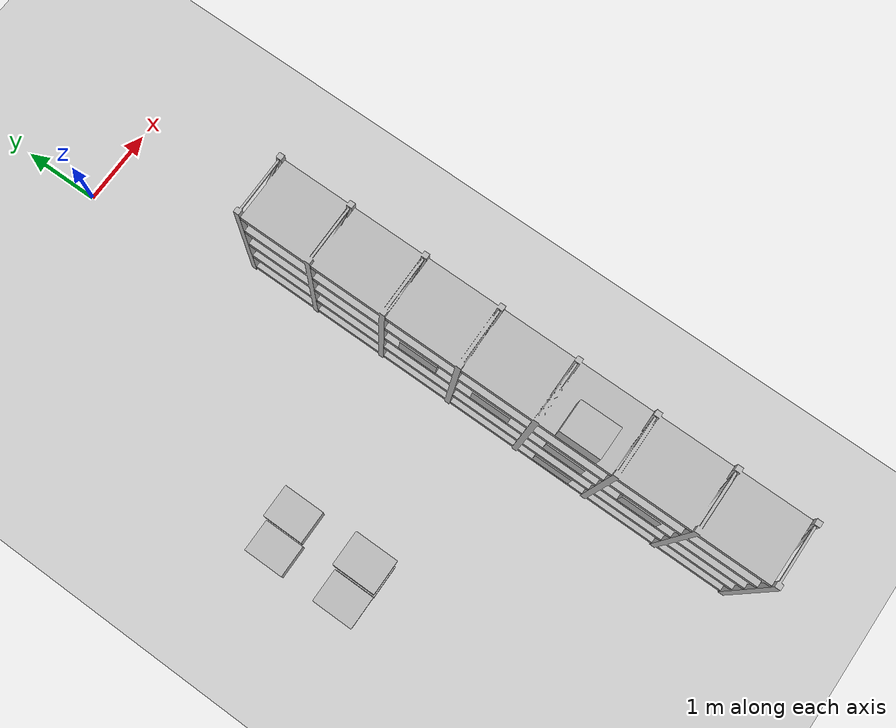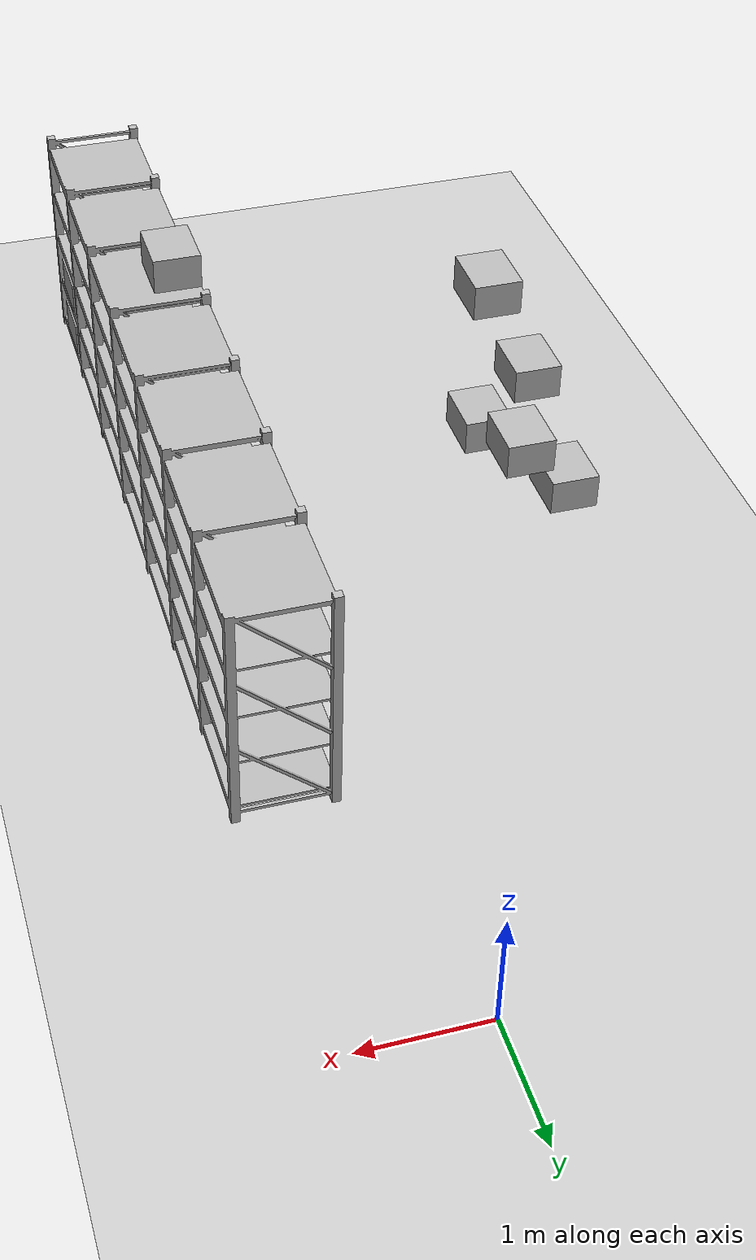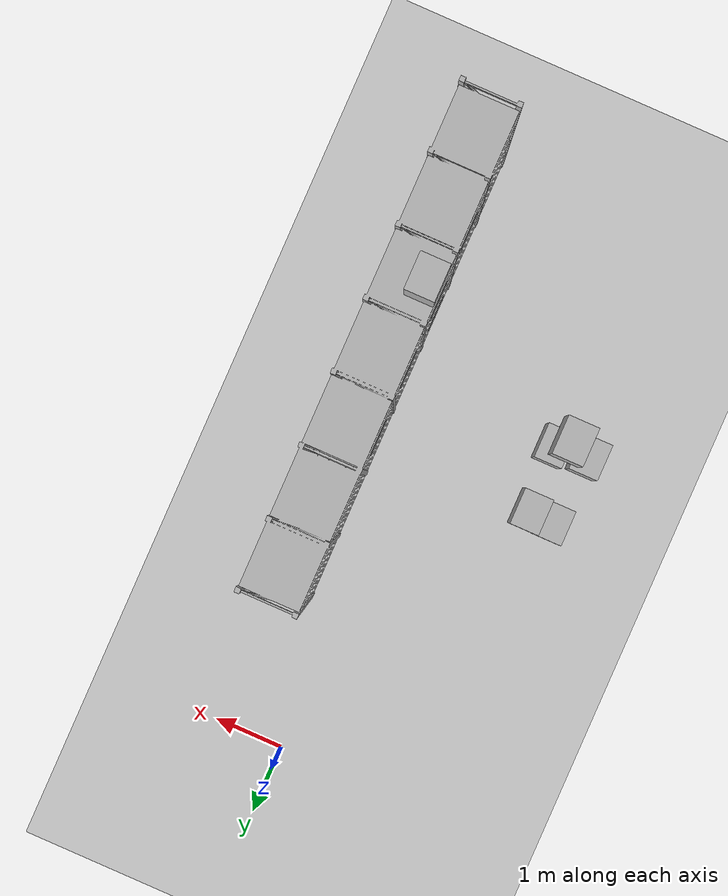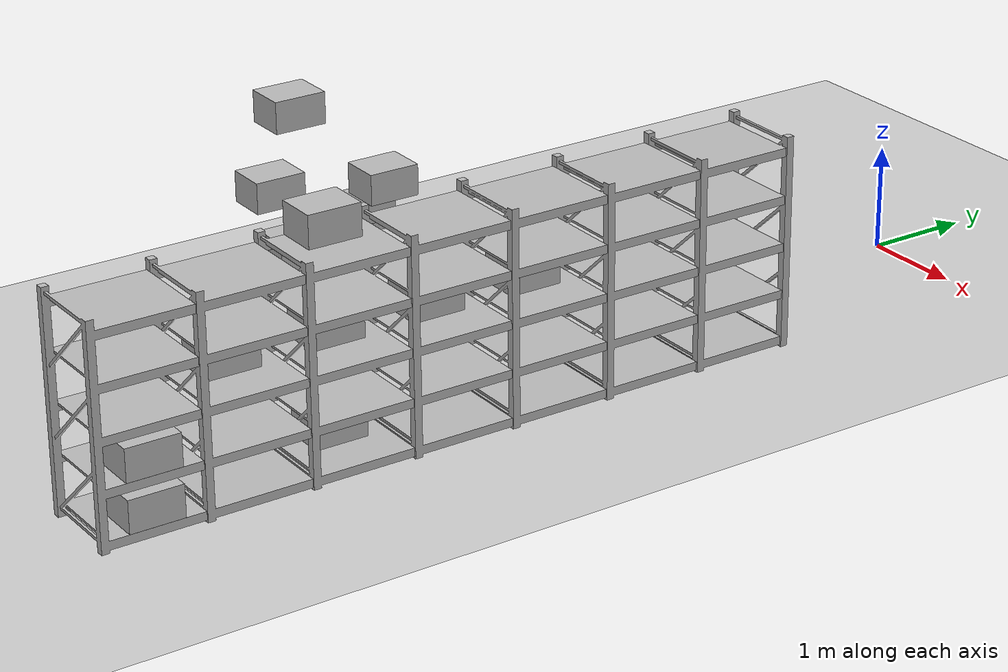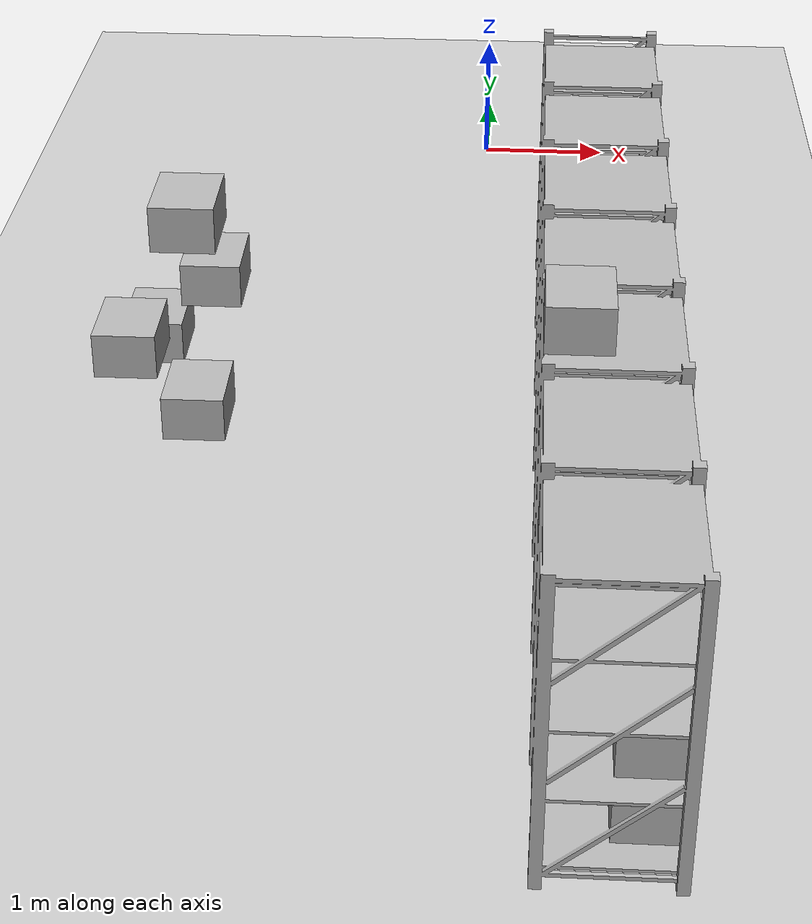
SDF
<sdf version="1.6">
 <world name="default">
  <model name="ground_plane">
   <static>1</static>
   <link name="link">
    <collision name="collision">
     <geometry><plane><normal>0 0 1</normal><size>100 100</size></plane></geometry>
     <surface><friction><ode><mu>100</mu><mu2>50</mu2></ode></friction></surface>
    </collision>
    <visual name="visual">
     <cast_shadows>0</cast_shadows>
     <geometry><plane><normal>0 0 1</normal><size>100 100</size></plane></geometry>
     <material>
      <script><uri>file://media/materials/scripts/gazebo.material</uri><name>Gazebo/Grey</name></script>
     </material>
    </visual>
   </link>
  </model>
  <model name="box_A_001">
   <pose>-1.7351 -5.4469 0.702 0 0 0</pose>
   <link name="link">
    <inertial>
     <mass>2.0</mass>
     <inertia><ixx>0.05667</ixx><iyy>0.04167</iyy><izz>0.06833</izz><ixy>0</ixy><ixz>0</ixz><iyz>0</iyz></inertia>
    </inertial>
    <collision name="collision">
     <geometry><box><size>0.4 0.5 0.3</size></box></geometry>
     <surface><friction><ode><mu>1.0</mu><mu2>1.0</mu2></ode></friction></surface>
    </collision>
    <visual name="visual">
     <cast_shadows>0</cast_shadows>
     <geometry><box><size>0.4 0.5 0.3</size></box></geometry>
     <material>
      <script>
       <uri>model://labeled_boxes/materials/scripts</uri>
       <uri>model://labeled_boxes/materials/textures</uri>
       <name>LabeledBox/A-001</name>
      </script>
     </material>
    </visual>
   </link>
  </model>
  <model name="box_A_002">
   <pose>-2.1451 -5.4469 1.152 0 0 0</pose>
   <link name="link">
    <inertial>
     <mass>2.0</mass>
     <inertia><ixx>0.05667</ixx><iyy>0.04167</iyy><izz>0.06833</izz><ixy>0</ixy><ixz>0</ixz><iyz>0</iyz></inertia>
    </inertial>
    <collision name="collision">
     <geometry><box><size>0.4 0.5 0.3</size></box></geometry>
     <surface><friction><ode><mu>1.0</mu><mu2>1.0</mu2></ode></friction></surface>
    </collision>
    <visual name="visual">
     <cast_shadows>0</cast_shadows>
     <geometry><box><size>0.4 0.5 0.3</size></box></geometry>
     <material>
      <script>
       <uri>model://labeled_boxes/materials/scripts</uri>
       <uri>model://labeled_boxes/materials/textures</uri>
       <name>LabeledBox/A-002</name>
      </script>
     </material>
    </visual>
   </link>
  </model>
  <model name="box_A_003">
   <pose>-1.7351 -5.4469 2.052 0 0 0</pose>
   <link name="link">
    <inertial>
     <mass>2.0</mass>
     <inertia><ixx>0.05667</ixx><iyy>0.04167</iyy><izz>0.06833</izz><ixy>0</ixy><ixz>0</ixz><iyz>0</iyz></inertia>
    </inertial>
    <collision name="collision">
     <geometry><box><size>0.4 0.5 0.3</size></box></geometry>
     <surface><friction><ode><mu>1.0</mu><mu2>1.0</mu2></ode></friction></surface>
    </collision>
    <visual name="visual">
     <cast_shadows>0</cast_shadows>
     <geometry><box><size>0.4 0.5 0.3</size></box></geometry>
     <material>
      <script>
       <uri>model://labeled_boxes/materials/scripts</uri>
       <uri>model://labeled_boxes/materials/textures</uri>
       <name>LabeledBox/A-003</name>
      </script>
     </material>
    </visual>
   </link>
  </model>
  <model name="box_A_004">
   <pose>-2.1451 -4.4977 0.702 0 0 0</pose>
   <link name="link">
    <inertial>
     <mass>2.0</mass>
     <inertia><ixx>0.05667</ixx><iyy>0.04167</iyy><izz>0.06833</izz><ixy>0</ixy><ixz>0</ixz><iyz>0</iyz></inertia>
    </inertial>
    <collision name="collision">
     <geometry><box><size>0.4 0.5 0.3</size></box></geometry>
     <surface><friction><ode><mu>1.0</mu><mu2>1.0</mu2></ode></friction></surface>
    </collision>
    <visual name="visual">
     <cast_shadows>0</cast_shadows>
     <geometry><box><size>0.4 0.5 0.3</size></box></geometry>
     <material>
      <script>
       <uri>model://labeled_boxes/materials/scripts</uri>
       <uri>model://labeled_boxes/materials/textures</uri>
       <name>LabeledBox/A-004</name>
      </script>
     </material>
    </visual>
   </link>
  </model>
  <model name="box_A_005">
   <pose>-1.7351 -4.4977 1.152 0 0 0</pose>
   <link name="link">
    <inertial>
     <mass>2.0</mass>
     <inertia><ixx>0.05667</ixx><iyy>0.04167</iyy><izz>0.06833</izz><ixy>0</ixy><ixz>0</ixz><iyz>0</iyz></inertia>
    </inertial>
    <collision name="collision">
     <geometry><box><size>0.4 0.5 0.3</size></box></geometry>
     <surface><friction><ode><mu>1.0</mu><mu2>1.0</mu2></ode></friction></surface>
    </collision>
    <visual name="visual">
     <cast_shadows>0</cast_shadows>
     <geometry><box><size>0.4 0.5 0.3</size></box></geometry>
     <material>
      <script>
       <uri>model://labeled_boxes/materials/scripts</uri>
       <uri>model://labeled_boxes/materials/textures</uri>
       <name>LabeledBox/A-005</name>
      </script>
     </material>
    </visual>
   </link>
  </model>
  <include>
   <name>rack_A2_0</name>
   <uri>model://warehouse_rack_5lvl_7bay</uri>
   <pose>0.8599 -5.5477 0 0 0 0</pose>
  </include>
  <model name="box_A_013">
   <pose>1.0649 -8.4445 0.252 0 0 0</pose>
   <link name="link">
    <inertial>
     <mass>2.0</mass>
     <inertia><ixx>0.05667</ixx><iyy>0.04167</iyy><izz>0.06833</izz><ixy>0</ixy><ixz>0</ixz><iyz>0</iyz></inertia>
    </inertial>
    <collision name="collision">
     <geometry><box><size>0.4 0.5 0.3</size></box></geometry>
     <surface><friction><ode><mu>1.0</mu><mu2>1.0</mu2></ode></friction></surface>
    </collision>
    <visual name="visual">
     <cast_shadows>0</cast_shadows>
     <geometry><box><size>0.4 0.5 0.3</size></box></geometry>
     <material>
      <script>
       <uri>model://labeled_boxes/materials/scripts</uri>
       <uri>model://labeled_boxes/materials/textures</uri>
       <name>LabeledBox/A-013</name>
      </script>
     </material>
    </visual>
   </link>
  </model>
  <model name="box_A_014">
   <pose>1.0649 -8.4445 0.702 0 0 0</pose>
   <link name="link">
    <inertial>
     <mass>2.0</mass>
     <inertia><ixx>0.05667</ixx><iyy>0.04167</iyy><izz>0.06833</izz><ixy>0</ixy><ixz>0</ixz><iyz>0</iyz></inertia>
    </inertial>
    <collision name="collision">
     <geometry><box><size>0.4 0.5 0.3</size></box></geometry>
     <surface><friction><ode><mu>1.0</mu><mu2>1.0</mu2></ode></friction></surface>
    </collision>
    <visual name="visual">
     <cast_shadows>0</cast_shadows>
     <geometry><box><size>0.4 0.5 0.3</size></box></geometry>
     <material>
      <script>
       <uri>model://labeled_boxes/materials/scripts</uri>
       <uri>model://labeled_boxes/materials/textures</uri>
       <name>LabeledBox/A-014</name>
      </script>
     </material>
    </visual>
   </link>
  </model>
  <model name="box_A_016">
   <pose>0.6549 -7.4906 1.152 0 0 0</pose>
   <link name="link">
    <inertial>
     <mass>2.0</mass>
     <inertia><ixx>0.05667</ixx><iyy>0.04167</iyy><izz>0.06833</izz><ixy>0</ixy><ixz>0</ixz><iyz>0</iyz></inertia>
    </inertial>
    <collision name="collision">
     <geometry><box><size>0.4 0.5 0.3</size></box></geometry>
     <surface><friction><ode><mu>1.0</mu><mu2>1.0</mu2></ode></friction></surface>
    </collision>
    <visual name="visual">
     <cast_shadows>0</cast_shadows>
     <geometry><box><size>0.4 0.5 0.3</size></box></geometry>
     <material>
      <script>
       <uri>model://labeled_boxes/materials/scripts</uri>
       <uri>model://labeled_boxes/materials/textures</uri>
       <name>LabeledBox/A-016</name>
      </script>
     </material>
    </visual>
   </link>
  </model>
  <model name="box_A_018">
   <pose>0.6549 -6.5191 0.252 0 0 0</pose>
   <link name="link">
    <inertial>
     <mass>2.0</mass>
     <inertia><ixx>0.05667</ixx><iyy>0.04167</iyy><izz>0.06833</izz><ixy>0</ixy><ixz>0</ixz><iyz>0</iyz></inertia>
    </inertial>
    <collision name="collision">
     <geometry><box><size>0.4 0.5 0.3</size></box></geometry>
     <surface><friction><ode><mu>1.0</mu><mu2>1.0</mu2></ode></friction></surface>
    </collision>
    <visual name="visual">
     <cast_shadows>0</cast_shadows>
     <geometry><box><size>0.4 0.5 0.3</size></box></geometry>
     <material>
      <script>
       <uri>model://labeled_boxes/materials/scripts</uri>
       <uri>model://labeled_boxes/materials/textures</uri>
       <name>LabeledBox/A-018</name>
      </script>
     </material>
    </visual>
   </link>
  </model>
  <model name="box_A_019">
   <pose>0.6549 -6.5191 1.152 0 0 0</pose>
   <link name="link">
    <inertial>
     <mass>2.0</mass>
     <inertia><ixx>0.05667</ixx><iyy>0.04167</iyy><izz>0.06833</izz><ixy>0</ixy><ixz>0</ixz><iyz>0</iyz></inertia>
    </inertial>
    <collision name="collision">
     <geometry><box><size>0.4 0.5 0.3</size></box></geometry>
     <surface><friction><ode><mu>1.0</mu><mu2>1.0</mu2></ode></friction></surface>
    </collision>
    <visual name="visual">
     <cast_shadows>0</cast_shadows>
     <geometry><box><size>0.4 0.5 0.3</size></box></geometry>
     <material>
      <script>
       <uri>model://labeled_boxes/materials/scripts</uri>
       <uri>model://labeled_boxes/materials/textures</uri>
       <name>LabeledBox/A-019</name>
      </script>
     </material>
    </visual>
   </link>
  </model>
  <model name="box_A_020">
   <pose>0.6549 -6.5191 2.052 0 0 0</pose>
   <link name="link">
    <inertial>
     <mass>2.0</mass>
     <inertia><ixx>0.05667</ixx><iyy>0.04167</iyy><izz>0.06833</izz><ixy>0</ixy><ixz>0</ixz><iyz>0</iyz></inertia>
    </inertial>
    <collision name="collision">
     <geometry><box><size>0.4 0.5 0.3</size></box></geometry>
     <surface><friction><ode><mu>1.0</mu><mu2>1.0</mu2></ode></friction></surface>
    </collision>
    <visual name="visual">
     <cast_shadows>0</cast_shadows>
     <geometry><box><size>0.4 0.5 0.3</size></box></geometry>
     <material>
      <script>
       <uri>model://labeled_boxes/materials/scripts</uri>
       <uri>model://labeled_boxes/materials/textures</uri>
       <name>LabeledBox/A-020</name>
      </script>
     </material>
    </visual>
   </link>
  </model>
  <model name="box_A_022">
   <pose>0.6549 -5.5477 1.152 0 0 0</pose>
   <link name="link">
    <inertial>
     <mass>2.0</mass>
     <inertia><ixx>0.05667</ixx><iyy>0.04167</iyy><izz>0.06833</izz><ixy>0</ixy><ixz>0</ixz><iyz>0</iyz></inertia>
    </inertial>
    <collision name="collision">
     <geometry><box><size>0.4 0.5 0.3</size></box></geometry>
     <surface><friction><ode><mu>1.0</mu><mu2>1.0</mu2></ode></friction></surface>
    </collision>
    <visual name="visual">
     <cast_shadows>0</cast_shadows>
     <geometry><box><size>0.4 0.5 0.3</size></box></geometry>
     <material>
      <script>
       <uri>model://labeled_boxes/materials/scripts</uri>
       <uri>model://labeled_boxes/materials/textures</uri>
       <name>LabeledBox/A-022</name>
      </script>
     </material>
    </visual>
   </link>
  </model>
  <model name="box_A_024">
   <pose>0.6549 -4.5763 1.152 0 0 0</pose>
   <link name="link">
    <inertial>
     <mass>2.0</mass>
     <inertia><ixx>0.05667</ixx><iyy>0.04167</iyy><izz>0.06833</izz><ixy>0</ixy><ixz>0</ixz><iyz>0</iyz></inertia>
    </inertial>
    <collision name="collision">
     <geometry><box><size>0.4 0.5 0.3</size></box></geometry>
     <surface><friction><ode><mu>1.0</mu><mu2>1.0</mu2></ode></friction></surface>
    </collision>
    <visual name="visual">
     <cast_shadows>0</cast_shadows>
     <geometry><box><size>0.4 0.5 0.3</size></box></geometry>
     <material>
      <script>
       <uri>model://labeled_boxes/materials/scripts</uri>
       <uri>model://labeled_boxes/materials/textures</uri>
       <name>LabeledBox/A-024</name>
      </script>
     </material>
    </visual>
   </link>
  </model>
 </world>
</sdf>
